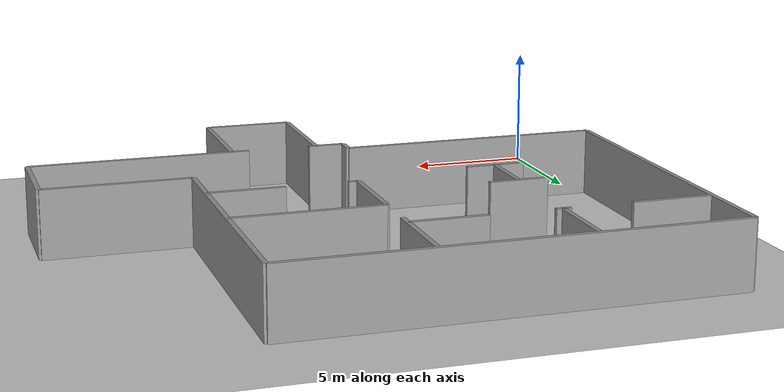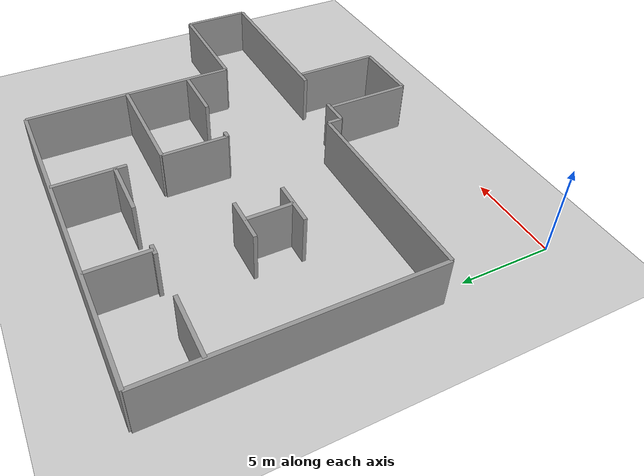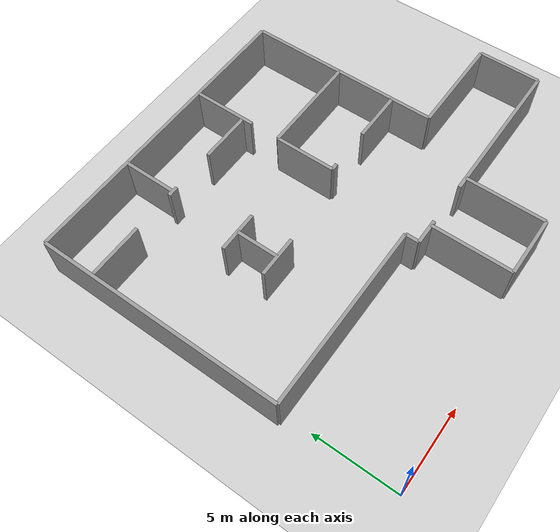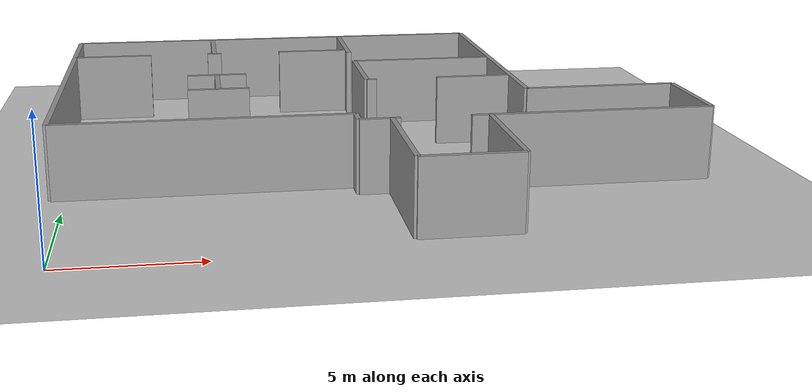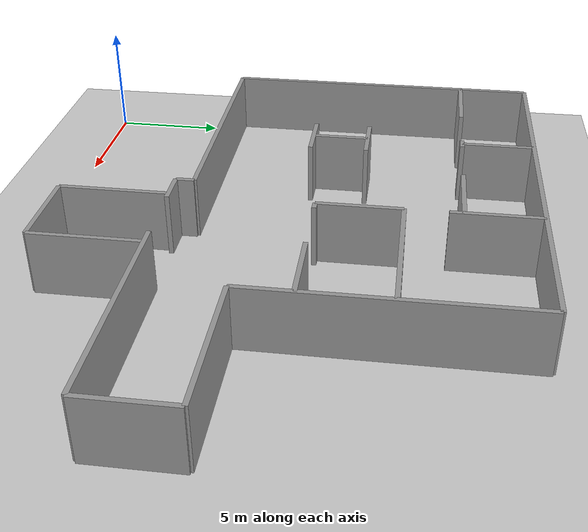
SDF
<?xml version="1.0" ?>

    <!-- this file is auto generated using pedsim_gazebo_plugin pkg -->
    <sdf version="1.5">
      <world name="default">

      <!-- Ground Plane -->

      <include>
        <uri>model://ground_plane</uri>
      </include>

      <include>
        <uri>model://sun</uri>
      </include>

     <model name='grey_wall_1'>
      <static>1</static>
      <link name='link'>

	  <pose frame=''>4.95 6.5  1.4 0 0 0.0</pose>

        <collision name='collision'>
          <geometry>
            <box>

	     <size> 10.9 .2  2.8 </size>

      	   </box>
          </geometry>
          <max_contacts>10</max_contacts>
          <surface>
            <contact>
              <ode/>
            </contact>
            <bounce/>
            <friction>
              <torsional>
                <ode/>
              </torsional>
              <ode/>
            </friction>
          </surface>
        </collision>
        <visual name='visual'>
          <cast_shadows>0</cast_shadows>
          <geometry>
            <box>

	     <size> 10.9 .2  2.8 </size>

      	   </box>
       </geometry>
          <material>
            <script>
              <uri>model://grey_wall/materials/scripts</uri>
              <uri>model://grey_wall/materials/textures</uri>
              <name>vrc/grey_wall</name>
            </script>
          </material>
        </visual>
        <self_collide>0</self_collide>
        <enable_wind>0</enable_wind>
        <kinematic>0</kinematic>
      </link>
    </model>

     <model name='grey_wall_2'>
      <static>1</static>
      <link name='link'>

	  <pose frame=''>10.4 6.1  1.4 0 0 1.57</pose>

        <collision name='collision'>
          <geometry>
            <box>

	     <size> 0.8 .2  2.8 </size>

      	   </box>
          </geometry>
          <max_contacts>10</max_contacts>
          <surface>
            <contact>
              <ode/>
            </contact>
            <bounce/>
            <friction>
              <torsional>
                <ode/>
              </torsional>
              <ode/>
            </friction>
          </surface>
        </collision>
        <visual name='visual'>
          <cast_shadows>0</cast_shadows>
          <geometry>
            <box>

	     <size> 0.8 .2  2.8 </size>

      	   </box>
       </geometry>
          <material>
            <script>
              <uri>model://grey_wall/materials/scripts</uri>
              <uri>model://grey_wall/materials/textures</uri>
              <name>vrc/grey_wall</name>
            </script>
          </material>
        </visual>
        <self_collide>0</self_collide>
        <enable_wind>0</enable_wind>
        <kinematic>0</kinematic>
      </link>
    </model>

     <model name='grey_wall_3'>
      <static>1</static>
      <link name='link'>

	  <pose frame=''>11.15 5.7  1.4 0 0 0.0</pose>

        <collision name='collision'>
          <geometry>
            <box>

	     <size> 1.5 .2  2.8 </size>

      	   </box>
          </geometry>
          <max_contacts>10</max_contacts>
          <surface>
            <contact>
              <ode/>
            </contact>
            <bounce/>
            <friction>
              <torsional>
                <ode/>
              </torsional>
              <ode/>
            </friction>
          </surface>
        </collision>
        <visual name='visual'>
          <cast_shadows>0</cast_shadows>
          <geometry>
            <box>

	     <size> 1.5 .2  2.8 </size>

      	   </box>
       </geometry>
          <material>
            <script>
              <uri>model://grey_wall/materials/scripts</uri>
              <uri>model://grey_wall/materials/textures</uri>
              <name>vrc/grey_wall</name>
            </script>
          </material>
        </visual>
        <self_collide>0</self_collide>
        <enable_wind>0</enable_wind>
        <kinematic>0</kinematic>
      </link>
    </model>

     <model name='grey_wall_4'>
      <static>1</static>
      <link name='link'>

	  <pose frame=''>11.6 3.35  1.4 0 0 1.57</pose>

        <collision name='collision'>
          <geometry>
            <box>

	     <size> 4.7 .2  2.8 </size>

      	   </box>
          </geometry>
          <max_contacts>10</max_contacts>
          <surface>
            <contact>
              <ode/>
            </contact>
            <bounce/>
            <friction>
              <torsional>
                <ode/>
              </torsional>
              <ode/>
            </friction>
          </surface>
        </collision>
        <visual name='visual'>
          <cast_shadows>0</cast_shadows>
          <geometry>
            <box>

	     <size> 4.7 .2  2.8 </size>

      	   </box>
       </geometry>
          <material>
            <script>
              <uri>model://grey_wall/materials/scripts</uri>
              <uri>model://grey_wall/materials/textures</uri>
              <name>vrc/grey_wall</name>
            </script>
          </material>
        </visual>
        <self_collide>0</self_collide>
        <enable_wind>0</enable_wind>
        <kinematic>0</kinematic>
      </link>
    </model>

     <model name='grey_wall_5'>
      <static>1</static>
      <link name='link'>

	  <pose frame=''>13.4 1.0  1.4 0 0 0.0</pose>

        <collision name='collision'>
          <geometry>
            <box>

	     <size> 3.6 .2  2.8 </size>

      	   </box>
          </geometry>
          <max_contacts>10</max_contacts>
          <surface>
            <contact>
              <ode/>
            </contact>
            <bounce/>
            <friction>
              <torsional>
                <ode/>
              </torsional>
              <ode/>
            </friction>
          </surface>
        </collision>
        <visual name='visual'>
          <cast_shadows>0</cast_shadows>
          <geometry>
            <box>

	     <size> 3.6 .2  2.8 </size>

      	   </box>
       </geometry>
          <material>
            <script>
              <uri>model://grey_wall/materials/scripts</uri>
              <uri>model://grey_wall/materials/textures</uri>
              <name>vrc/grey_wall</name>
            </script>
          </material>
        </visual>
        <self_collide>0</self_collide>
        <enable_wind>0</enable_wind>
        <kinematic>0</kinematic>
      </link>
    </model>

     <model name='grey_wall_6'>
      <static>1</static>
      <link name='link'>

	  <pose frame=''>15.2 3.35  1.4 0 0 1.57</pose>

        <collision name='collision'>
          <geometry>
            <box>

	     <size> 4.7 .2  2.8 </size>

      	   </box>
          </geometry>
          <max_contacts>10</max_contacts>
          <surface>
            <contact>
              <ode/>
            </contact>
            <bounce/>
            <friction>
              <torsional>
                <ode/>
              </torsional>
              <ode/>
            </friction>
          </surface>
        </collision>
        <visual name='visual'>
          <cast_shadows>0</cast_shadows>
          <geometry>
            <box>

	     <size> 4.7 .2  2.8 </size>

      	   </box>
       </geometry>
          <material>
            <script>
              <uri>model://grey_wall/materials/scripts</uri>
              <uri>model://grey_wall/materials/textures</uri>
              <name>vrc/grey_wall</name>
            </script>
          </material>
        </visual>
        <self_collide>0</self_collide>
        <enable_wind>0</enable_wind>
        <kinematic>0</kinematic>
      </link>
    </model>

     <model name='grey_wall_7'>
      <static>1</static>
      <link name='link'>

	  <pose frame=''>19.05 5.7  1.4 0 0 0.0</pose>

        <collision name='collision'>
          <geometry>
            <box>

	     <size> 9.1 .2  2.8 </size>

      	   </box>
          </geometry>
          <max_contacts>10</max_contacts>
          <surface>
            <contact>
              <ode/>
            </contact>
            <bounce/>
            <friction>
              <torsional>
                <ode/>
              </torsional>
              <ode/>
            </friction>
          </surface>
        </collision>
        <visual name='visual'>
          <cast_shadows>0</cast_shadows>
          <geometry>
            <box>

	     <size> 9.1 .2  2.8 </size>

      	   </box>
       </geometry>
          <material>
            <script>
              <uri>model://grey_wall/materials/scripts</uri>
              <uri>model://grey_wall/materials/textures</uri>
              <name>vrc/grey_wall</name>
            </script>
          </material>
        </visual>
        <self_collide>0</self_collide>
        <enable_wind>0</enable_wind>
        <kinematic>0</kinematic>
      </link>
    </model>

     <model name='grey_wall_8'>
      <static>1</static>
      <link name='link'>

	  <pose frame=''>23.6 7.55  1.4 0 0 1.57</pose>

        <collision name='collision'>
          <geometry>
            <box>

	     <size> 3.7 .2  2.8 </size>

      	   </box>
          </geometry>
          <max_contacts>10</max_contacts>
          <surface>
            <contact>
              <ode/>
            </contact>
            <bounce/>
            <friction>
              <torsional>
                <ode/>
              </torsional>
              <ode/>
            </friction>
          </surface>
        </collision>
        <visual name='visual'>
          <cast_shadows>0</cast_shadows>
          <geometry>
            <box>

	     <size> 3.7 .2  2.8 </size>

      	   </box>
       </geometry>
          <material>
            <script>
              <uri>model://grey_wall/materials/scripts</uri>
              <uri>model://grey_wall/materials/textures</uri>
              <name>vrc/grey_wall</name>
            </script>
          </material>
        </visual>
        <self_collide>0</self_collide>
        <enable_wind>0</enable_wind>
        <kinematic>0</kinematic>
      </link>
    </model>

     <model name='grey_wall_9'>
      <static>1</static>
      <link name='link'>

	  <pose frame=''>20.6 9.4  1.4 0 0 -0.0</pose>

        <collision name='collision'>
          <geometry>
            <box>

	     <size> 6.0 .2  2.8 </size>

      	   </box>
          </geometry>
          <max_contacts>10</max_contacts>
          <surface>
            <contact>
              <ode/>
            </contact>
            <bounce/>
            <friction>
              <torsional>
                <ode/>
              </torsional>
              <ode/>
            </friction>
          </surface>
        </collision>
        <visual name='visual'>
          <cast_shadows>0</cast_shadows>
          <geometry>
            <box>

	     <size> 6.0 .2  2.8 </size>

      	   </box>
       </geometry>
          <material>
            <script>
              <uri>model://grey_wall/materials/scripts</uri>
              <uri>model://grey_wall/materials/textures</uri>
              <name>vrc/grey_wall</name>
            </script>
          </material>
        </visual>
        <self_collide>0</self_collide>
        <enable_wind>0</enable_wind>
        <kinematic>0</kinematic>
      </link>
    </model>

     <model name='grey_wall_10'>
      <static>1</static>
      <link name='link'>

	  <pose frame=''>17.6 15.2  1.4 0 0 1.57</pose>

        <collision name='collision'>
          <geometry>
            <box>

	     <size> 11.6 .2  2.8 </size>

      	   </box>
          </geometry>
          <max_contacts>10</max_contacts>
          <surface>
            <contact>
              <ode/>
            </contact>
            <bounce/>
            <friction>
              <torsional>
                <ode/>
              </torsional>
              <ode/>
            </friction>
          </surface>
        </collision>
        <visual name='visual'>
          <cast_shadows>0</cast_shadows>
          <geometry>
            <box>

	     <size> 11.6 .2  2.8 </size>

      	   </box>
       </geometry>
          <material>
            <script>
              <uri>model://grey_wall/materials/scripts</uri>
              <uri>model://grey_wall/materials/textures</uri>
              <name>vrc/grey_wall</name>
            </script>
          </material>
        </visual>
        <self_collide>0</self_collide>
        <enable_wind>0</enable_wind>
        <kinematic>0</kinematic>
      </link>
    </model>

     <model name='grey_wall_11'>
      <static>1</static>
      <link name='link'>

	  <pose frame=''>11.8 11.8  1.4 0 0 0.0</pose>

        <collision name='collision'>
          <geometry>
            <box>

	     <size> 0.4 .2  2.8 </size>

      	   </box>
          </geometry>
          <max_contacts>10</max_contacts>
          <surface>
            <contact>
              <ode/>
            </contact>
            <bounce/>
            <friction>
              <torsional>
                <ode/>
              </torsional>
              <ode/>
            </friction>
          </surface>
        </collision>
        <visual name='visual'>
          <cast_shadows>0</cast_shadows>
          <geometry>
            <box>

	     <size> 0.4 .2  2.8 </size>

      	   </box>
       </geometry>
          <material>
            <script>
              <uri>model://grey_wall/materials/scripts</uri>
              <uri>model://grey_wall/materials/textures</uri>
              <name>vrc/grey_wall</name>
            </script>
          </material>
        </visual>
        <self_collide>0</self_collide>
        <enable_wind>0</enable_wind>
        <kinematic>0</kinematic>
      </link>
    </model>

     <model name='grey_wall_12'>
      <static>1</static>
      <link name='link'>

	  <pose frame=''>16.05 11.8  1.4 0 0 0.0</pose>

        <collision name='collision'>
          <geometry>
            <box>

	     <size> 3.1 .2  2.8 </size>

      	   </box>
          </geometry>
          <max_contacts>10</max_contacts>
          <surface>
            <contact>
              <ode/>
            </contact>
            <bounce/>
            <friction>
              <torsional>
                <ode/>
              </torsional>
              <ode/>
            </friction>
          </surface>
        </collision>
        <visual name='visual'>
          <cast_shadows>0</cast_shadows>
          <geometry>
            <box>

	     <size> 3.1 .2  2.8 </size>

      	   </box>
       </geometry>
          <material>
            <script>
              <uri>model://grey_wall/materials/scripts</uri>
              <uri>model://grey_wall/materials/textures</uri>
              <name>vrc/grey_wall</name>
            </script>
          </material>
        </visual>
        <self_collide>0</self_collide>
        <enable_wind>0</enable_wind>
        <kinematic>0</kinematic>
      </link>
    </model>

     <model name='grey_wall_13'>
      <static>1</static>
      <link name='link'>

	  <pose frame=''>11.6 13.6  1.4 0 0 1.57</pose>

        <collision name='collision'>
          <geometry>
            <box>

	     <size> 3.6 .2  2.8 </size>

      	   </box>
          </geometry>
          <max_contacts>10</max_contacts>
          <surface>
            <contact>
              <ode/>
            </contact>
            <bounce/>
            <friction>
              <torsional>
                <ode/>
              </torsional>
              <ode/>
            </friction>
          </surface>
        </collision>
        <visual name='visual'>
          <cast_shadows>0</cast_shadows>
          <geometry>
            <box>

	     <size> 3.6 .2  2.8 </size>

      	   </box>
       </geometry>
          <material>
            <script>
              <uri>model://grey_wall/materials/scripts</uri>
              <uri>model://grey_wall/materials/textures</uri>
              <name>vrc/grey_wall</name>
            </script>
          </material>
        </visual>
        <self_collide>0</self_collide>
        <enable_wind>0</enable_wind>
        <kinematic>0</kinematic>
      </link>
    </model>

     <model name='grey_wall_14'>
      <static>1</static>
      <link name='link'>

	  <pose frame=''>14.6 15.4  1.4 0 0 0.0</pose>

        <collision name='collision'>
          <geometry>
            <box>

	     <size> 6.0 .2  2.8 </size>

      	   </box>
          </geometry>
          <max_contacts>10</max_contacts>
          <surface>
            <contact>
              <ode/>
            </contact>
            <bounce/>
            <friction>
              <torsional>
                <ode/>
              </torsional>
              <ode/>
            </friction>
          </surface>
        </collision>
        <visual name='visual'>
          <cast_shadows>0</cast_shadows>
          <geometry>
            <box>

	     <size> 6.0 .2  2.8 </size>

      	   </box>
       </geometry>
          <material>
            <script>
              <uri>model://grey_wall/materials/scripts</uri>
              <uri>model://grey_wall/materials/textures</uri>
              <name>vrc/grey_wall</name>
            </script>
          </material>
        </visual>
        <self_collide>0</self_collide>
        <enable_wind>0</enable_wind>
        <kinematic>0</kinematic>
      </link>
    </model>

     <model name='grey_wall_15'>
      <static>1</static>
      <link name='link'>

	  <pose frame=''>8.55 21.0  1.4 0 0 -0.0</pose>

        <collision name='collision'>
          <geometry>
            <box>

	     <size> 18.1 .2  2.8 </size>

      	   </box>
          </geometry>
          <max_contacts>10</max_contacts>
          <surface>
            <contact>
              <ode/>
            </contact>
            <bounce/>
            <friction>
              <torsional>
                <ode/>
              </torsional>
              <ode/>
            </friction>
          </surface>
        </collision>
        <visual name='visual'>
          <cast_shadows>0</cast_shadows>
          <geometry>
            <box>

	     <size> 18.1 .2  2.8 </size>

      	   </box>
       </geometry>
          <material>
            <script>
              <uri>model://grey_wall/materials/scripts</uri>
              <uri>model://grey_wall/materials/textures</uri>
              <name>vrc/grey_wall</name>
            </script>
          </material>
        </visual>
        <self_collide>0</self_collide>
        <enable_wind>0</enable_wind>
        <kinematic>0</kinematic>
      </link>
    </model>

     <model name='grey_wall_16'>
      <static>1</static>
      <link name='link'>

	  <pose frame=''>11.6 19.1  1.4 0 0 1.57</pose>

        <collision name='collision'>
          <geometry>
            <box>

	     <size> 3.8 .2  2.8 </size>

      	   </box>
          </geometry>
          <max_contacts>10</max_contacts>
          <surface>
            <contact>
              <ode/>
            </contact>
            <bounce/>
            <friction>
              <torsional>
                <ode/>
              </torsional>
              <ode/>
            </friction>
          </surface>
        </collision>
        <visual name='visual'>
          <cast_shadows>0</cast_shadows>
          <geometry>
            <box>

	     <size> 3.8 .2  2.8 </size>

      	   </box>
       </geometry>
          <material>
            <script>
              <uri>model://grey_wall/materials/scripts</uri>
              <uri>model://grey_wall/materials/textures</uri>
              <name>vrc/grey_wall</name>
            </script>
          </material>
        </visual>
        <self_collide>0</self_collide>
        <enable_wind>0</enable_wind>
        <kinematic>0</kinematic>
      </link>
    </model>

     <model name='grey_wall_17'>
      <static>1</static>
      <link name='link'>

	  <pose frame=''>10.05 17.8  1.4 0 0 -0.0</pose>

        <collision name='collision'>
          <geometry>
            <box>

	     <size> 3.1 .2  2.8 </size>

      	   </box>
          </geometry>
          <max_contacts>10</max_contacts>
          <surface>
            <contact>
              <ode/>
            </contact>
            <bounce/>
            <friction>
              <torsional>
                <ode/>
              </torsional>
              <ode/>
            </friction>
          </surface>
        </collision>
        <visual name='visual'>
          <cast_shadows>0</cast_shadows>
          <geometry>
            <box>

	     <size> 3.1 .2  2.8 </size>

      	   </box>
       </geometry>
          <material>
            <script>
              <uri>model://grey_wall/materials/scripts</uri>
              <uri>model://grey_wall/materials/textures</uri>
              <name>vrc/grey_wall</name>
            </script>
          </material>
        </visual>
        <self_collide>0</self_collide>
        <enable_wind>0</enable_wind>
        <kinematic>0</kinematic>
      </link>
    </model>

     <model name='grey_wall_18'>
      <static>1</static>
      <link name='link'>

	  <pose frame=''>5.6 17.8  1.4 0 0 0.0</pose>

        <collision name='collision'>
          <geometry>
            <box>

	     <size> 0.6 .2  2.8 </size>

      	   </box>
          </geometry>
          <max_contacts>10</max_contacts>
          <surface>
            <contact>
              <ode/>
            </contact>
            <bounce/>
            <friction>
              <torsional>
                <ode/>
              </torsional>
              <ode/>
            </friction>
          </surface>
        </collision>
        <visual name='visual'>
          <cast_shadows>0</cast_shadows>
          <geometry>
            <box>

	     <size> 0.6 .2  2.8 </size>

      	   </box>
       </geometry>
          <material>
            <script>
              <uri>model://grey_wall/materials/scripts</uri>
              <uri>model://grey_wall/materials/textures</uri>
              <name>vrc/grey_wall</name>
            </script>
          </material>
        </visual>
        <self_collide>0</self_collide>
        <enable_wind>0</enable_wind>
        <kinematic>0</kinematic>
      </link>
    </model>

     <model name='grey_wall_19'>
      <static>1</static>
      <link name='link'>

	  <pose frame=''>5.6 19.4  1.4 0 0 1.57</pose>

        <collision name='collision'>
          <geometry>
            <box>

	     <size> 3.2 .2  2.8 </size>

      	   </box>
          </geometry>
          <max_contacts>10</max_contacts>
          <surface>
            <contact>
              <ode/>
            </contact>
            <bounce/>
            <friction>
              <torsional>
                <ode/>
              </torsional>
              <ode/>
            </friction>
          </surface>
        </collision>
        <visual name='visual'>
          <cast_shadows>0</cast_shadows>
          <geometry>
            <box>

	     <size> 3.2 .2  2.8 </size>

      	   </box>
       </geometry>
          <material>
            <script>
              <uri>model://grey_wall/materials/scripts</uri>
              <uri>model://grey_wall/materials/textures</uri>
              <name>vrc/grey_wall</name>
            </script>
          </material>
        </visual>
        <self_collide>0</self_collide>
        <enable_wind>0</enable_wind>
        <kinematic>0</kinematic>
      </link>
    </model>

     <model name='grey_wall_20'>
      <static>1</static>
      <link name='link'>

	  <pose frame=''>1.15 17.8  1.4 0 0 0.0</pose>

        <collision name='collision'>
          <geometry>
            <box>

	     <size> 3.3 .2  2.8 </size>

      	   </box>
          </geometry>
          <max_contacts>10</max_contacts>
          <surface>
            <contact>
              <ode/>
            </contact>
            <bounce/>
            <friction>
              <torsional>
                <ode/>
              </torsional>
              <ode/>
            </friction>
          </surface>
        </collision>
        <visual name='visual'>
          <cast_shadows>0</cast_shadows>
          <geometry>
            <box>

	     <size> 3.3 .2  2.8 </size>

      	   </box>
       </geometry>
          <material>
            <script>
              <uri>model://grey_wall/materials/scripts</uri>
              <uri>model://grey_wall/materials/textures</uri>
              <name>vrc/grey_wall</name>
            </script>
          </material>
        </visual>
        <self_collide>0</self_collide>
        <enable_wind>0</enable_wind>
        <kinematic>0</kinematic>
      </link>
    </model>

     <model name='grey_wall_21'>
      <static>1</static>
      <link name='link'>

	  <pose frame=''>-0.5 13.75  1.4 0 0 1.57</pose>

        <collision name='collision'>
          <geometry>
            <box>

	     <size> 14.5 .2  2.8 </size>

      	   </box>
          </geometry>
          <max_contacts>10</max_contacts>
          <surface>
            <contact>
              <ode/>
            </contact>
            <bounce/>
            <friction>
              <torsional>
                <ode/>
              </torsional>
              <ode/>
            </friction>
          </surface>
        </collision>
        <visual name='visual'>
          <cast_shadows>0</cast_shadows>
          <geometry>
            <box>

	     <size> 14.5 .2  2.8 </size>

      	   </box>
       </geometry>
          <material>
            <script>
              <uri>model://grey_wall/materials/scripts</uri>
              <uri>model://grey_wall/materials/textures</uri>
              <name>vrc/grey_wall</name>
            </script>
          </material>
        </visual>
        <self_collide>0</self_collide>
        <enable_wind>0</enable_wind>
        <kinematic>0</kinematic>
      </link>
    </model>

     <model name='grey_wall_22'>
      <static>1</static>
      <link name='link'>

	  <pose frame=''>5.6 13.5  1.4 0 0 0.0</pose>

        <collision name='collision'>
          <geometry>
            <box>

	     <size> 2.4 .2  2.8 </size>

      	   </box>
          </geometry>
          <max_contacts>10</max_contacts>
          <surface>
            <contact>
              <ode/>
            </contact>
            <bounce/>
            <friction>
              <torsional>
                <ode/>
              </torsional>
              <ode/>
            </friction>
          </surface>
        </collision>
        <visual name='visual'>
          <cast_shadows>0</cast_shadows>
          <geometry>
            <box>

	     <size> 2.4 .2  2.8 </size>

      	   </box>
       </geometry>
          <material>
            <script>
              <uri>model://grey_wall/materials/scripts</uri>
              <uri>model://grey_wall/materials/textures</uri>
              <name>vrc/grey_wall</name>
            </script>
          </material>
        </visual>
        <self_collide>0</self_collide>
        <enable_wind>0</enable_wind>
        <kinematic>0</kinematic>
      </link>
    </model>

     <model name='grey_wall_23'>
      <static>1</static>
      <link name='link'>

	  <pose frame=''>5.6 11.0  1.4 0 0 0.0</pose>

        <collision name='collision'>
          <geometry>
            <box>

	     <size> 2.4 .2  2.8 </size>

      	   </box>
          </geometry>
          <max_contacts>10</max_contacts>
          <surface>
            <contact>
              <ode/>
            </contact>
            <bounce/>
            <friction>
              <torsional>
                <ode/>
              </torsional>
              <ode/>
            </friction>
          </surface>
        </collision>
        <visual name='visual'>
          <cast_shadows>0</cast_shadows>
          <geometry>
            <box>

	     <size> 2.4 .2  2.8 </size>

      	   </box>
       </geometry>
          <material>
            <script>
              <uri>model://grey_wall/materials/scripts</uri>
              <uri>model://grey_wall/materials/textures</uri>
              <name>vrc/grey_wall</name>
            </script>
          </material>
        </visual>
        <self_collide>0</self_collide>
        <enable_wind>0</enable_wind>
        <kinematic>0</kinematic>
      </link>
    </model>

     <model name='grey_wall_24'>
      <static>1</static>
      <link name='link'>

	  <pose frame=''>5.6 12.25  1.4 0 0 1.57</pose>

        <collision name='collision'>
          <geometry>
            <box>

	     <size> 2.5 .2  2.8 </size>

      	   </box>
          </geometry>
          <max_contacts>10</max_contacts>
          <surface>
            <contact>
              <ode/>
            </contact>
            <bounce/>
            <friction>
              <torsional>
                <ode/>
              </torsional>
              <ode/>
            </friction>
          </surface>
        </collision>
        <visual name='visual'>
          <cast_shadows>0</cast_shadows>
          <geometry>
            <box>

	     <size> 2.5 .2  2.8 </size>

      	   </box>
       </geometry>
          <material>
            <script>
              <uri>model://grey_wall/materials/scripts</uri>
              <uri>model://grey_wall/materials/textures</uri>
              <name>vrc/grey_wall</name>
            </script>
          </material>
        </visual>
        <self_collide>0</self_collide>
        <enable_wind>0</enable_wind>
        <kinematic>0</kinematic>
      </link>
    </model>

            <plugin name="ActorPosesPlugin" filename="libActorPosesPlugin.dylib">
        </plugin>

      </world>
    </sdf>
